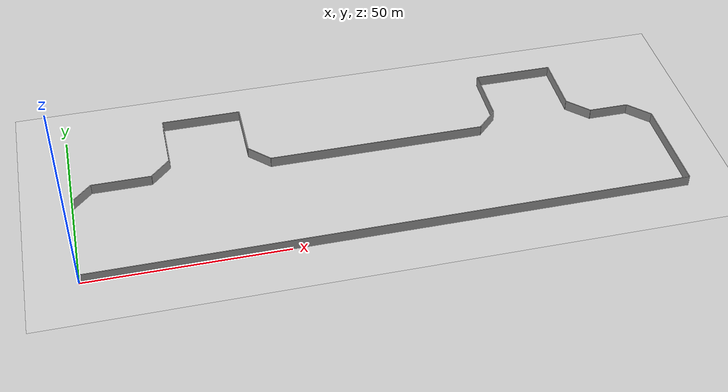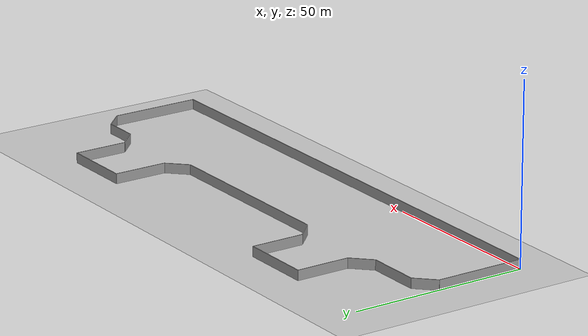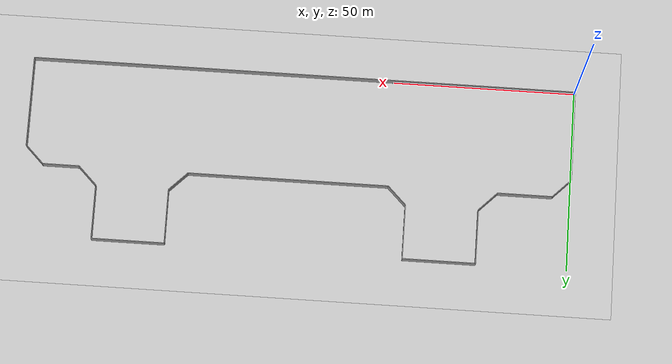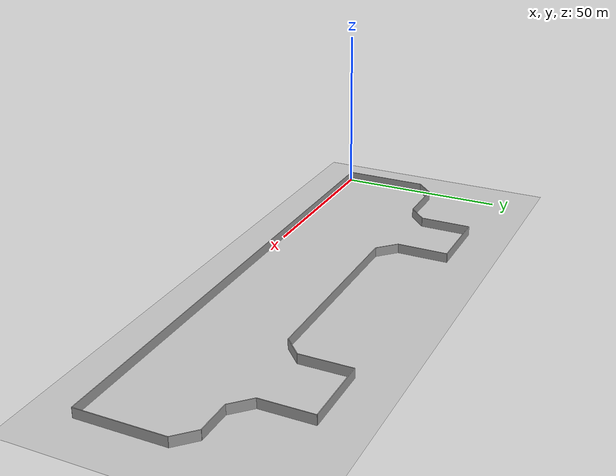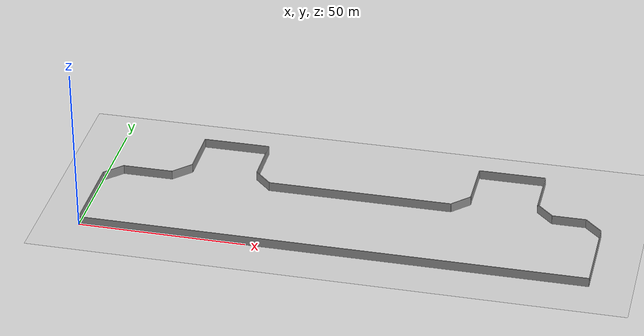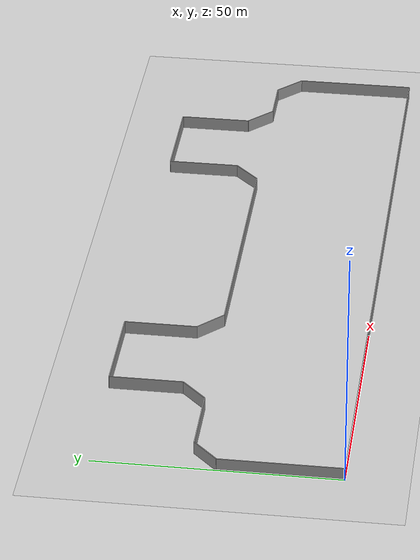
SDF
<?xml version="1.0"?>

<!-- this file is auto generated using pedsim_gazebo_plugin pkg -->
<sdf version="1.5">
  <world name="default">

    <!-- Ground Plane -->

    <include>
      <uri>model://ground_plane</uri>
    </include>

    <include>
      <uri>model://sun</uri>
    </include>

    <model name='grey_wall_1'>
      <static>1</static>
      <link name='link'>

        <pose frame=''>75.0 0.0  1.4 0 0 0.0</pose>

        <collision name='collision'>
          <geometry>
            <box>

              <size> 150.0 .2  2.8 </size>

            </box>
          </geometry>
          <max_contacts>10</max_contacts>
          <surface>
            <contact>
              <ode />
            </contact>
            <bounce />
            <friction>
              <torsional>
                <ode />
              </torsional>
              <ode />
            </friction>
          </surface>
        </collision>
        <visual name='visual'>
          <cast_shadows>0</cast_shadows>
          <geometry>
            <box>

              <size> 150.0 .2  2.8 </size>

            </box>
          </geometry>
          <material>
            <script>
              <uri>model://grey_wall/materials/scripts</uri>
              <uri>model://grey_wall/materials/textures</uri>
              <name>vrc/grey_wall</name>
            </script>
          </material>
        </visual>
        <self_collide>0</self_collide>
        <enable_wind>0</enable_wind>
        <kinematic>0</kinematic>
      </link>
    </model>

    <model name='grey_wall_2'>
      <static>1</static>
      <link name='link'>

        <pose frame=''>0.0 12.5  1.4 0 0 1.57</pose>

        <collision name='collision'>
          <geometry>
            <box>

              <size> 25.0 .2  2.8 </size>

            </box>
          </geometry>
          <max_contacts>10</max_contacts>
          <surface>
            <contact>
              <ode />
            </contact>
            <bounce />
            <friction>
              <torsional>
                <ode />
              </torsional>
              <ode />
            </friction>
          </surface>
        </collision>
        <visual name='visual'>
          <cast_shadows>0</cast_shadows>
          <geometry>
            <box>

              <size> 25.0 .2  2.8 </size>

            </box>
          </geometry>
          <material>
            <script>
              <uri>model://grey_wall/materials/scripts</uri>
              <uri>model://grey_wall/materials/textures</uri>
              <name>vrc/grey_wall</name>
            </script>
          </material>
        </visual>
        <self_collide>0</self_collide>
        <enable_wind>0</enable_wind>
        <kinematic>0</kinematic>
      </link>
    </model>

    <model name='grey_wall_3'>
      <static>1</static>
      <link name='link'>

        <pose frame=''>150.0 12.5  1.4 0 0 1.57</pose>

        <collision name='collision'>
          <geometry>
            <box>

              <size> 25.0 .2  2.8 </size>

            </box>
          </geometry>
          <max_contacts>10</max_contacts>
          <surface>
            <contact>
              <ode />
            </contact>
            <bounce />
            <friction>
              <torsional>
                <ode />
              </torsional>
              <ode />
            </friction>
          </surface>
        </collision>
        <visual name='visual'>
          <cast_shadows>0</cast_shadows>
          <geometry>
            <box>

              <size> 25.0 .2  2.8 </size>

            </box>
          </geometry>
          <material>
            <script>
              <uri>model://grey_wall/materials/scripts</uri>
              <uri>model://grey_wall/materials/textures</uri>
              <name>vrc/grey_wall</name>
            </script>
          </material>
        </visual>
        <self_collide>0</self_collide>
        <enable_wind>0</enable_wind>
        <kinematic>0</kinematic>
      </link>
    </model>

    <model name='grey_wall_4'>
      <static>1</static>
      <link name='link'>

        <pose frame=''>2.5 27.5  1.4 0 0 0.785398163397</pose>

        <collision name='collision'>
          <geometry>
            <box>

              <size> 7.07106781187 .2  2.8 </size>

            </box>
          </geometry>
          <max_contacts>10</max_contacts>
          <surface>
            <contact>
              <ode />
            </contact>
            <bounce />
            <friction>
              <torsional>
                <ode />
              </torsional>
              <ode />
            </friction>
          </surface>
        </collision>
        <visual name='visual'>
          <cast_shadows>0</cast_shadows>
          <geometry>
            <box>

              <size> 7.07106781187 .2  2.8 </size>

            </box>
          </geometry>
          <material>
            <script>
              <uri>model://grey_wall/materials/scripts</uri>
              <uri>model://grey_wall/materials/textures</uri>
              <name>vrc/grey_wall</name>
            </script>
          </material>
        </visual>
        <self_collide>0</self_collide>
        <enable_wind>0</enable_wind>
        <kinematic>0</kinematic>
      </link>
    </model>

    <model name='grey_wall_5'>
      <static>1</static>
      <link name='link'>

        <pose frame=''>147.5 27.5  1.4 0 0 -0.785398163397</pose>

        <collision name='collision'>
          <geometry>
            <box>

              <size> 7.07106781187 .2  2.8 </size>

            </box>
          </geometry>
          <max_contacts>10</max_contacts>
          <surface>
            <contact>
              <ode />
            </contact>
            <bounce />
            <friction>
              <torsional>
                <ode />
              </torsional>
              <ode />
            </friction>
          </surface>
        </collision>
        <visual name='visual'>
          <cast_shadows>0</cast_shadows>
          <geometry>
            <box>

              <size> 7.07106781187 .2  2.8 </size>

            </box>
          </geometry>
          <material>
            <script>
              <uri>model://grey_wall/materials/scripts</uri>
              <uri>model://grey_wall/materials/textures</uri>
              <name>vrc/grey_wall</name>
            </script>
          </material>
        </visual>
        <self_collide>0</self_collide>
        <enable_wind>0</enable_wind>
        <kinematic>0</kinematic>
      </link>
    </model>

    <model name='grey_wall_6'>
      <static>1</static>
      <link name='link'>

        <pose frame=''>140.0 30.0  1.4 0 0 -0.0</pose>

        <collision name='collision'>
          <geometry>
            <box>

              <size> 10.0 .2  2.8 </size>

            </box>
          </geometry>
          <max_contacts>10</max_contacts>
          <surface>
            <contact>
              <ode />
            </contact>
            <bounce />
            <friction>
              <torsional>
                <ode />
              </torsional>
              <ode />
            </friction>
          </surface>
        </collision>
        <visual name='visual'>
          <cast_shadows>0</cast_shadows>
          <geometry>
            <box>

              <size> 10.0 .2  2.8 </size>

            </box>
          </geometry>
          <material>
            <script>
              <uri>model://grey_wall/materials/scripts</uri>
              <uri>model://grey_wall/materials/textures</uri>
              <name>vrc/grey_wall</name>
            </script>
          </material>
        </visual>
        <self_collide>0</self_collide>
        <enable_wind>0</enable_wind>
        <kinematic>0</kinematic>
      </link>
    </model>

    <model name='grey_wall_7'>
      <static>1</static>
      <link name='link'>

        <pose frame=''>132.5 32.5  1.4 0 0 -0.785398163397</pose>

        <collision name='collision'>
          <geometry>
            <box>

              <size> 7.07106781187 .2  2.8 </size>

            </box>
          </geometry>
          <max_contacts>10</max_contacts>
          <surface>
            <contact>
              <ode />
            </contact>
            <bounce />
            <friction>
              <torsional>
                <ode />
              </torsional>
              <ode />
            </friction>
          </surface>
        </collision>
        <visual name='visual'>
          <cast_shadows>0</cast_shadows>
          <geometry>
            <box>

              <size> 7.07106781187 .2  2.8 </size>

            </box>
          </geometry>
          <material>
            <script>
              <uri>model://grey_wall/materials/scripts</uri>
              <uri>model://grey_wall/materials/textures</uri>
              <name>vrc/grey_wall</name>
            </script>
          </material>
        </visual>
        <self_collide>0</self_collide>
        <enable_wind>0</enable_wind>
        <kinematic>0</kinematic>
      </link>
    </model>

    <model name='grey_wall_8'>
      <static>1</static>
      <link name='link'>

        <pose frame=''>130.0 42.5  1.4 0 0 1.57</pose>

        <collision name='collision'>
          <geometry>
            <box>

              <size> 15.0 .2  2.8 </size>

            </box>
          </geometry>
          <max_contacts>10</max_contacts>
          <surface>
            <contact>
              <ode />
            </contact>
            <bounce />
            <friction>
              <torsional>
                <ode />
              </torsional>
              <ode />
            </friction>
          </surface>
        </collision>
        <visual name='visual'>
          <cast_shadows>0</cast_shadows>
          <geometry>
            <box>

              <size> 15.0 .2  2.8 </size>

            </box>
          </geometry>
          <material>
            <script>
              <uri>model://grey_wall/materials/scripts</uri>
              <uri>model://grey_wall/materials/textures</uri>
              <name>vrc/grey_wall</name>
            </script>
          </material>
        </visual>
        <self_collide>0</self_collide>
        <enable_wind>0</enable_wind>
        <kinematic>0</kinematic>
      </link>
    </model>

    <model name='grey_wall_9'>
      <static>1</static>
      <link name='link'>

        <pose frame=''>120.0 50.0  1.4 0 0 -0.0</pose>

        <collision name='collision'>
          <geometry>
            <box>

              <size> 20.0 .2  2.8 </size>

            </box>
          </geometry>
          <max_contacts>10</max_contacts>
          <surface>
            <contact>
              <ode />
            </contact>
            <bounce />
            <friction>
              <torsional>
                <ode />
              </torsional>
              <ode />
            </friction>
          </surface>
        </collision>
        <visual name='visual'>
          <cast_shadows>0</cast_shadows>
          <geometry>
            <box>

              <size> 20.0 .2  2.8 </size>

            </box>
          </geometry>
          <material>
            <script>
              <uri>model://grey_wall/materials/scripts</uri>
              <uri>model://grey_wall/materials/textures</uri>
              <name>vrc/grey_wall</name>
            </script>
          </material>
        </visual>
        <self_collide>0</self_collide>
        <enable_wind>0</enable_wind>
        <kinematic>0</kinematic>
      </link>
    </model>

    <model name='grey_wall_10'>
      <static>1</static>
      <link name='link'>

        <pose frame=''>110.0 42.5  1.4 0 0 1.57</pose>

        <collision name='collision'>
          <geometry>
            <box>

              <size> 15.0 .2  2.8 </size>

            </box>
          </geometry>
          <max_contacts>10</max_contacts>
          <surface>
            <contact>
              <ode />
            </contact>
            <bounce />
            <friction>
              <torsional>
                <ode />
              </torsional>
              <ode />
            </friction>
          </surface>
        </collision>
        <visual name='visual'>
          <cast_shadows>0</cast_shadows>
          <geometry>
            <box>

              <size> 15.0 .2  2.8 </size>

            </box>
          </geometry>
          <material>
            <script>
              <uri>model://grey_wall/materials/scripts</uri>
              <uri>model://grey_wall/materials/textures</uri>
              <name>vrc/grey_wall</name>
            </script>
          </material>
        </visual>
        <self_collide>0</self_collide>
        <enable_wind>0</enable_wind>
        <kinematic>0</kinematic>
      </link>
    </model>

    <model name='grey_wall_11'>
      <static>1</static>
      <link name='link'>

        <pose frame=''>107.5 32.5  1.4 0 0 0.785398163397</pose>

        <collision name='collision'>
          <geometry>
            <box>

              <size> 7.07106781187 .2  2.8 </size>

            </box>
          </geometry>
          <max_contacts>10</max_contacts>
          <surface>
            <contact>
              <ode />
            </contact>
            <bounce />
            <friction>
              <torsional>
                <ode />
              </torsional>
              <ode />
            </friction>
          </surface>
        </collision>
        <visual name='visual'>
          <cast_shadows>0</cast_shadows>
          <geometry>
            <box>

              <size> 7.07106781187 .2  2.8 </size>

            </box>
          </geometry>
          <material>
            <script>
              <uri>model://grey_wall/materials/scripts</uri>
              <uri>model://grey_wall/materials/textures</uri>
              <name>vrc/grey_wall</name>
            </script>
          </material>
        </visual>
        <self_collide>0</self_collide>
        <enable_wind>0</enable_wind>
        <kinematic>0</kinematic>
      </link>
    </model>

    <model name='grey_wall_12'>
      <static>1</static>
      <link name='link'>

        <pose frame=''>77.5 30.0  1.4 0 0 -0.0</pose>

        <collision name='collision'>
          <geometry>
            <box>

              <size> 55.0 .2  2.8 </size>

            </box>
          </geometry>
          <max_contacts>10</max_contacts>
          <surface>
            <contact>
              <ode />
            </contact>
            <bounce />
            <friction>
              <torsional>
                <ode />
              </torsional>
              <ode />
            </friction>
          </surface>
        </collision>
        <visual name='visual'>
          <cast_shadows>0</cast_shadows>
          <geometry>
            <box>

              <size> 55.0 .2  2.8 </size>

            </box>
          </geometry>
          <material>
            <script>
              <uri>model://grey_wall/materials/scripts</uri>
              <uri>model://grey_wall/materials/textures</uri>
              <name>vrc/grey_wall</name>
            </script>
          </material>
        </visual>
        <self_collide>0</self_collide>
        <enable_wind>0</enable_wind>
        <kinematic>0</kinematic>
      </link>
    </model>

    <model name='grey_wall_13'>
      <static>1</static>
      <link name='link'>

        <pose frame=''>47.5 32.5  1.4 0 0 -0.785398163397</pose>

        <collision name='collision'>
          <geometry>
            <box>

              <size> 7.07106781187 .2  2.8 </size>

            </box>
          </geometry>
          <max_contacts>10</max_contacts>
          <surface>
            <contact>
              <ode />
            </contact>
            <bounce />
            <friction>
              <torsional>
                <ode />
              </torsional>
              <ode />
            </friction>
          </surface>
        </collision>
        <visual name='visual'>
          <cast_shadows>0</cast_shadows>
          <geometry>
            <box>

              <size> 7.07106781187 .2  2.8 </size>

            </box>
          </geometry>
          <material>
            <script>
              <uri>model://grey_wall/materials/scripts</uri>
              <uri>model://grey_wall/materials/textures</uri>
              <name>vrc/grey_wall</name>
            </script>
          </material>
        </visual>
        <self_collide>0</self_collide>
        <enable_wind>0</enable_wind>
        <kinematic>0</kinematic>
      </link>
    </model>

    <model name='grey_wall_14'>
      <static>1</static>
      <link name='link'>

        <pose frame=''>45.0 42.5  1.4 0 0 1.57</pose>

        <collision name='collision'>
          <geometry>
            <box>

              <size> 15.0 .2  2.8 </size>

            </box>
          </geometry>
          <max_contacts>10</max_contacts>
          <surface>
            <contact>
              <ode />
            </contact>
            <bounce />
            <friction>
              <torsional>
                <ode />
              </torsional>
              <ode />
            </friction>
          </surface>
        </collision>
        <visual name='visual'>
          <cast_shadows>0</cast_shadows>
          <geometry>
            <box>

              <size> 15.0 .2  2.8 </size>

            </box>
          </geometry>
          <material>
            <script>
              <uri>model://grey_wall/materials/scripts</uri>
              <uri>model://grey_wall/materials/textures</uri>
              <name>vrc/grey_wall</name>
            </script>
          </material>
        </visual>
        <self_collide>0</self_collide>
        <enable_wind>0</enable_wind>
        <kinematic>0</kinematic>
      </link>
    </model>

    <model name='grey_wall_15'>
      <static>1</static>
      <link name='link'>

        <pose frame=''>35.0 50.0  1.4 0 0 -0.0</pose>

        <collision name='collision'>
          <geometry>
            <box>

              <size> 20.0 .2  2.8 </size>

            </box>
          </geometry>
          <max_contacts>10</max_contacts>
          <surface>
            <contact>
              <ode />
            </contact>
            <bounce />
            <friction>
              <torsional>
                <ode />
              </torsional>
              <ode />
            </friction>
          </surface>
        </collision>
        <visual name='visual'>
          <cast_shadows>0</cast_shadows>
          <geometry>
            <box>

              <size> 20.0 .2  2.8 </size>

            </box>
          </geometry>
          <material>
            <script>
              <uri>model://grey_wall/materials/scripts</uri>
              <uri>model://grey_wall/materials/textures</uri>
              <name>vrc/grey_wall</name>
            </script>
          </material>
        </visual>
        <self_collide>0</self_collide>
        <enable_wind>0</enable_wind>
        <kinematic>0</kinematic>
      </link>
    </model>

    <model name='grey_wall_16'>
      <static>1</static>
      <link name='link'>

        <pose frame=''>25.0 42.5  1.4 0 0 1.57</pose>

        <collision name='collision'>
          <geometry>
            <box>

              <size> 15.0 .2  2.8 </size>

            </box>
          </geometry>
          <max_contacts>10</max_contacts>
          <surface>
            <contact>
              <ode />
            </contact>
            <bounce />
            <friction>
              <torsional>
                <ode />
              </torsional>
              <ode />
            </friction>
          </surface>
        </collision>
        <visual name='visual'>
          <cast_shadows>0</cast_shadows>
          <geometry>
            <box>

              <size> 15.0 .2  2.8 </size>

            </box>
          </geometry>
          <material>
            <script>
              <uri>model://grey_wall/materials/scripts</uri>
              <uri>model://grey_wall/materials/textures</uri>
              <name>vrc/grey_wall</name>
            </script>
          </material>
        </visual>
        <self_collide>0</self_collide>
        <enable_wind>0</enable_wind>
        <kinematic>0</kinematic>
      </link>
    </model>

    <model name='grey_wall_17'>
      <static>1</static>
      <link name='link'>

        <pose frame=''>22.5 32.5  1.4 0 0 0.785398163397</pose>

        <collision name='collision'>
          <geometry>
            <box>

              <size> 7.07106781187 .2  2.8 </size>

            </box>
          </geometry>
          <max_contacts>10</max_contacts>
          <surface>
            <contact>
              <ode />
            </contact>
            <bounce />
            <friction>
              <torsional>
                <ode />
              </torsional>
              <ode />
            </friction>
          </surface>
        </collision>
        <visual name='visual'>
          <cast_shadows>0</cast_shadows>
          <geometry>
            <box>

              <size> 7.07106781187 .2  2.8 </size>

            </box>
          </geometry>
          <material>
            <script>
              <uri>model://grey_wall/materials/scripts</uri>
              <uri>model://grey_wall/materials/textures</uri>
              <name>vrc/grey_wall</name>
            </script>
          </material>
        </visual>
        <self_collide>0</self_collide>
        <enable_wind>0</enable_wind>
        <kinematic>0</kinematic>
      </link>
    </model>

    <model name='grey_wall_18'>
      <static>1</static>
      <link name='link'>

        <pose frame=''>12.5 30.0  1.4 0 0 -0.0</pose>

        <collision name='collision'>
          <geometry>
            <box>

              <size> 15.0 .2  2.8 </size>

            </box>
          </geometry>
          <max_contacts>10</max_contacts>
          <surface>
            <contact>
              <ode />
            </contact>
            <bounce />
            <friction>
              <torsional>
                <ode />
              </torsional>
              <ode />
            </friction>
          </surface>
        </collision>
        <visual name='visual'>
          <cast_shadows>0</cast_shadows>
          <geometry>
            <box>

              <size> 15.0 .2  2.8 </size>

            </box>
          </geometry>
          <material>
            <script>
              <uri>model://grey_wall/materials/scripts</uri>
              <uri>model://grey_wall/materials/textures</uri>
              <name>vrc/grey_wall</name>
            </script>
          </material>
        </visual>
        <self_collide>0</self_collide>
        <enable_wind>0</enable_wind>
        <kinematic>0</kinematic>
      </link>
    </model>

    <plugin name="ActorPosesPlugin" filename="libActorPosesPlugin.so"></plugin>

  </world>
</sdf>
